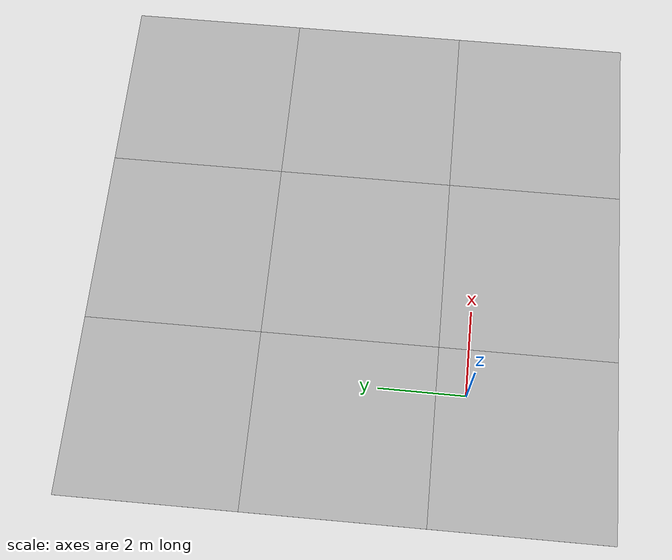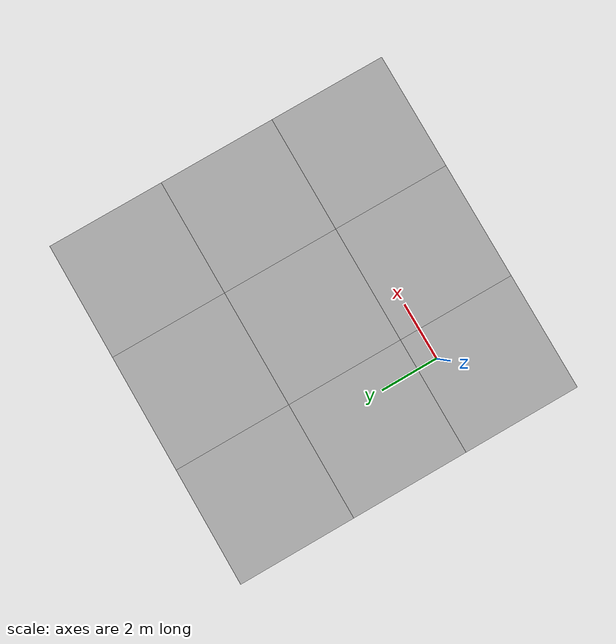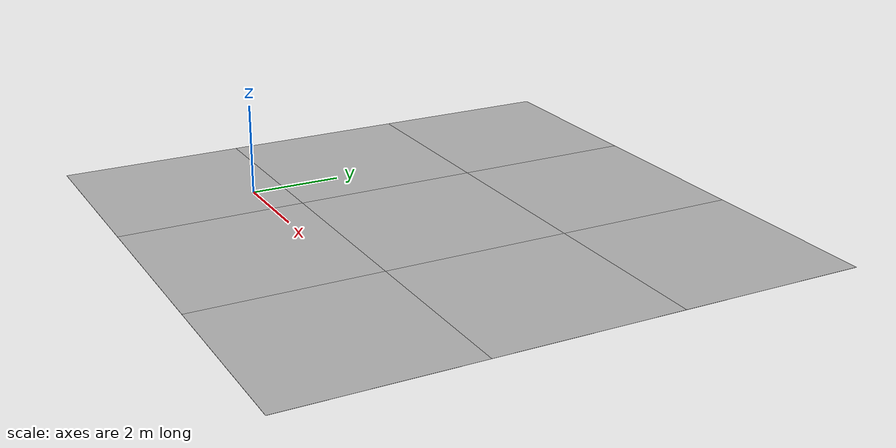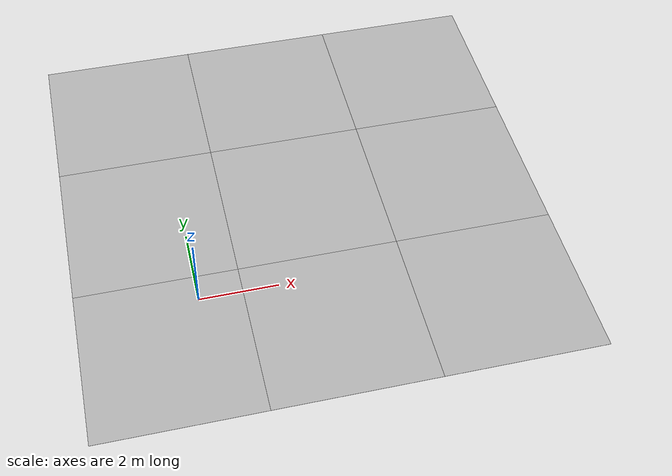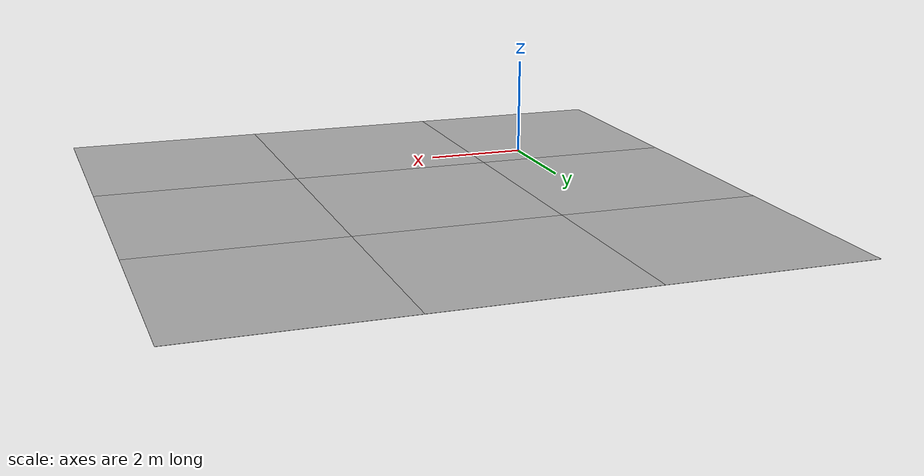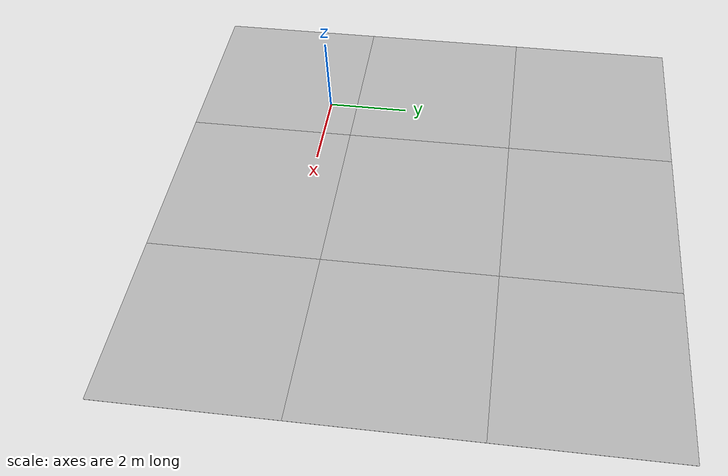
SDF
<sdf version='1.6'><world name='default'>
    <light name='sun_light' type='directional'>
      <pose frame=''>0 0 10 0 -0 0</pose>
      <diffuse>0.5 0.5 0.5 1</diffuse>
      <specular>0.1 0.1 0.1 1</specular>
      <direction>0.1 0.1 -0.9</direction>
      <attenuation>
        <range>20</range>
        <constant>0.5</constant>
        <linear>0.01</linear>
        <quadratic>0.001</quadratic>
      </attenuation>
      <cast_shadows>1</cast_shadows>
    </light>

    <model name='Tile/0-0'>
      <static>1</static>
      <link name='link'>
        <collision name='collision'>
          <geometry>
            <plane>
              <normal>0 0 1</normal>
              <size>4.096 4.096</size>
            </plane>
          </geometry>
          <surface>
            <friction>
              <ode>
                <mu>100</mu>
                <mu2>50</mu2>
              </ode>
              <torsional>
                <ode/>
              </torsional>
            </friction>
            <contact>
              <ode/>
            </contact>
            <bounce/>
          </surface>
          <max_contacts>10</max_contacts>
        </collision>
        <visual name='visual'>
          <cast_shadows>0</cast_shadows>
          <geometry>
            <plane>
              <normal>0 0 1</normal>
              <size>4.096 4.096</size>
            </plane>
          </geometry>
          <material>
            <script>
              <uri>file://materials/scripts</uri>
              <uri>file://materials/textures</uri>
              <name>Tile/2d6d550247164405bd7f7721bde8c66eb1b70c9c122a16d1426408409930bc02</name>
            </script>
          </material>
        </visual>
        <self_collide>0</self_collide>
        <enable_wind>0</enable_wind>
        <kinematic>0</kinematic>
      </link>
      <pose frame=''>-0.952 -1.3519999999999999 0 0 -0 0</pose>
    </model>

    <model name='Tile/0-1'>
      <static>1</static>
      <link name='link'>
        <collision name='collision'>
          <geometry>
            <plane>
              <normal>0 0 1</normal>
              <size>4.096 4.096</size>
            </plane>
          </geometry>
          <surface>
            <friction>
              <ode>
                <mu>100</mu>
                <mu2>50</mu2>
              </ode>
              <torsional>
                <ode/>
              </torsional>
            </friction>
            <contact>
              <ode/>
            </contact>
            <bounce/>
          </surface>
          <max_contacts>10</max_contacts>
        </collision>
        <visual name='visual'>
          <cast_shadows>0</cast_shadows>
          <geometry>
            <plane>
              <normal>0 0 1</normal>
              <size>4.096 4.096</size>
            </plane>
          </geometry>
          <material>
            <script>
              <uri>file://materials/scripts</uri>
              <uri>file://materials/textures</uri>
              <name>Tile/5eab350b8220ac9944dbdfa4ac3288c7c17e24c3bf5df0dfcf6173d64dae00a1</name>
            </script>
          </material>
        </visual>
        <self_collide>0</self_collide>
        <enable_wind>0</enable_wind>
        <kinematic>0</kinematic>
      </link>
      <pose frame=''>-0.952 2.744 0 0 -0 0</pose>
    </model>

    <model name='Tile/0-2'>
      <static>1</static>
      <link name='link'>
        <collision name='collision'>
          <geometry>
            <plane>
              <normal>0 0 1</normal>
              <size>4.096 4.096</size>
            </plane>
          </geometry>
          <surface>
            <friction>
              <ode>
                <mu>100</mu>
                <mu2>50</mu2>
              </ode>
              <torsional>
                <ode/>
              </torsional>
            </friction>
            <contact>
              <ode/>
            </contact>
            <bounce/>
          </surface>
          <max_contacts>10</max_contacts>
        </collision>
        <visual name='visual'>
          <cast_shadows>0</cast_shadows>
          <geometry>
            <plane>
              <normal>0 0 1</normal>
              <size>4.096 4.096</size>
            </plane>
          </geometry>
          <material>
            <script>
              <uri>file://materials/scripts</uri>
              <uri>file://materials/textures</uri>
              <name>Tile/5eab350b8220ac9944dbdfa4ac3288c7c17e24c3bf5df0dfcf6173d64dae00a1</name>
            </script>
          </material>
        </visual>
        <self_collide>0</self_collide>
        <enable_wind>0</enable_wind>
        <kinematic>0</kinematic>
      </link>
      <pose frame=''>-0.952 6.84 0 0 -0 0</pose>
    </model>

    <model name='Tile/1-0'>
      <static>1</static>
      <link name='link'>
        <collision name='collision'>
          <geometry>
            <plane>
              <normal>0 0 1</normal>
              <size>4.096 4.096</size>
            </plane>
          </geometry>
          <surface>
            <friction>
              <ode>
                <mu>100</mu>
                <mu2>50</mu2>
              </ode>
              <torsional>
                <ode/>
              </torsional>
            </friction>
            <contact>
              <ode/>
            </contact>
            <bounce/>
          </surface>
          <max_contacts>10</max_contacts>
        </collision>
        <visual name='visual'>
          <cast_shadows>0</cast_shadows>
          <geometry>
            <plane>
              <normal>0 0 1</normal>
              <size>4.096 4.096</size>
            </plane>
          </geometry>
          <material>
            <script>
              <uri>file://materials/scripts</uri>
              <uri>file://materials/textures</uri>
              <name>Tile/ae5cc26feb82b0066c12f65bf03c7ebf14f680dca05fb5ed5e37624fc9694613</name>
            </script>
          </material>
        </visual>
        <self_collide>0</self_collide>
        <enable_wind>0</enable_wind>
        <kinematic>0</kinematic>
      </link>
      <pose frame=''>3.144 -1.3519999999999999 0 0 -0 0</pose>
    </model>

    <model name='Tile/1-1'>
      <static>1</static>
      <link name='link'>
        <collision name='collision'>
          <geometry>
            <plane>
              <normal>0 0 1</normal>
              <size>4.096 4.096</size>
            </plane>
          </geometry>
          <surface>
            <friction>
              <ode>
                <mu>100</mu>
                <mu2>50</mu2>
              </ode>
              <torsional>
                <ode/>
              </torsional>
            </friction>
            <contact>
              <ode/>
            </contact>
            <bounce/>
          </surface>
          <max_contacts>10</max_contacts>
        </collision>
        <visual name='visual'>
          <cast_shadows>0</cast_shadows>
          <geometry>
            <plane>
              <normal>0 0 1</normal>
              <size>4.096 4.096</size>
            </plane>
          </geometry>
          <material>
            <script>
              <uri>file://materials/scripts</uri>
              <uri>file://materials/textures</uri>
              <name>Tile/7c7676a043978056e2dcaa1df6b2311433875df57502c47e0edf798f0f554ee5</name>
            </script>
          </material>
        </visual>
        <self_collide>0</self_collide>
        <enable_wind>0</enable_wind>
        <kinematic>0</kinematic>
      </link>
      <pose frame=''>3.144 2.744 0 0 -0 0</pose>
    </model>

    <model name='Tile/1-2'>
      <static>1</static>
      <link name='link'>
        <collision name='collision'>
          <geometry>
            <plane>
              <normal>0 0 1</normal>
              <size>4.096 4.096</size>
            </plane>
          </geometry>
          <surface>
            <friction>
              <ode>
                <mu>100</mu>
                <mu2>50</mu2>
              </ode>
              <torsional>
                <ode/>
              </torsional>
            </friction>
            <contact>
              <ode/>
            </contact>
            <bounce/>
          </surface>
          <max_contacts>10</max_contacts>
        </collision>
        <visual name='visual'>
          <cast_shadows>0</cast_shadows>
          <geometry>
            <plane>
              <normal>0 0 1</normal>
              <size>4.096 4.096</size>
            </plane>
          </geometry>
          <material>
            <script>
              <uri>file://materials/scripts</uri>
              <uri>file://materials/textures</uri>
              <name>Tile/8cf6a34fca11c2b6496549a07ef968b54b35f20b6f43ce5c64f0e8dbaa2fcc6f</name>
            </script>
          </material>
        </visual>
        <self_collide>0</self_collide>
        <enable_wind>0</enable_wind>
        <kinematic>0</kinematic>
      </link>
      <pose frame=''>3.144 6.84 0 0 -0 0</pose>
    </model>

    <model name='Tile/2-0'>
      <static>1</static>
      <link name='link'>
        <collision name='collision'>
          <geometry>
            <plane>
              <normal>0 0 1</normal>
              <size>4.096 4.096</size>
            </plane>
          </geometry>
          <surface>
            <friction>
              <ode>
                <mu>100</mu>
                <mu2>50</mu2>
              </ode>
              <torsional>
                <ode/>
              </torsional>
            </friction>
            <contact>
              <ode/>
            </contact>
            <bounce/>
          </surface>
          <max_contacts>10</max_contacts>
        </collision>
        <visual name='visual'>
          <cast_shadows>0</cast_shadows>
          <geometry>
            <plane>
              <normal>0 0 1</normal>
              <size>4.096 4.096</size>
            </plane>
          </geometry>
          <material>
            <script>
              <uri>file://materials/scripts</uri>
              <uri>file://materials/textures</uri>
              <name>Tile/5eab350b8220ac9944dbdfa4ac3288c7c17e24c3bf5df0dfcf6173d64dae00a1</name>
            </script>
          </material>
        </visual>
        <self_collide>0</self_collide>
        <enable_wind>0</enable_wind>
        <kinematic>0</kinematic>
      </link>
      <pose frame=''>7.24 -1.3519999999999999 0 0 -0 0</pose>
    </model>

    <model name='Tile/2-1'>
      <static>1</static>
      <link name='link'>
        <collision name='collision'>
          <geometry>
            <plane>
              <normal>0 0 1</normal>
              <size>4.096 4.096</size>
            </plane>
          </geometry>
          <surface>
            <friction>
              <ode>
                <mu>100</mu>
                <mu2>50</mu2>
              </ode>
              <torsional>
                <ode/>
              </torsional>
            </friction>
            <contact>
              <ode/>
            </contact>
            <bounce/>
          </surface>
          <max_contacts>10</max_contacts>
        </collision>
        <visual name='visual'>
          <cast_shadows>0</cast_shadows>
          <geometry>
            <plane>
              <normal>0 0 1</normal>
              <size>4.096 4.096</size>
            </plane>
          </geometry>
          <material>
            <script>
              <uri>file://materials/scripts</uri>
              <uri>file://materials/textures</uri>
              <name>Tile/97b9ece35b90a3d0bad0c5d52c95e15703fb8137cd542df7890ec52c6b25aea6</name>
            </script>
          </material>
        </visual>
        <self_collide>0</self_collide>
        <enable_wind>0</enable_wind>
        <kinematic>0</kinematic>
      </link>
      <pose frame=''>7.24 2.744 0 0 -0 0</pose>
    </model>

    <model name='Tile/2-2'>
      <static>1</static>
      <link name='link'>
        <collision name='collision'>
          <geometry>
            <plane>
              <normal>0 0 1</normal>
              <size>4.096 4.096</size>
            </plane>
          </geometry>
          <surface>
            <friction>
              <ode>
                <mu>100</mu>
                <mu2>50</mu2>
              </ode>
              <torsional>
                <ode/>
              </torsional>
            </friction>
            <contact>
              <ode/>
            </contact>
            <bounce/>
          </surface>
          <max_contacts>10</max_contacts>
        </collision>
        <visual name='visual'>
          <cast_shadows>0</cast_shadows>
          <geometry>
            <plane>
              <normal>0 0 1</normal>
              <size>4.096 4.096</size>
            </plane>
          </geometry>
          <material>
            <script>
              <uri>file://materials/scripts</uri>
              <uri>file://materials/textures</uri>
              <name>Tile/5eab350b8220ac9944dbdfa4ac3288c7c17e24c3bf5df0dfcf6173d64dae00a1</name>
            </script>
          </material>
        </visual>
        <self_collide>0</self_collide>
        <enable_wind>0</enable_wind>
        <kinematic>0</kinematic>
      </link>
      <pose frame=''>7.24 6.84 0 0 -0 0</pose>
    </model>
    </world></sdf>
